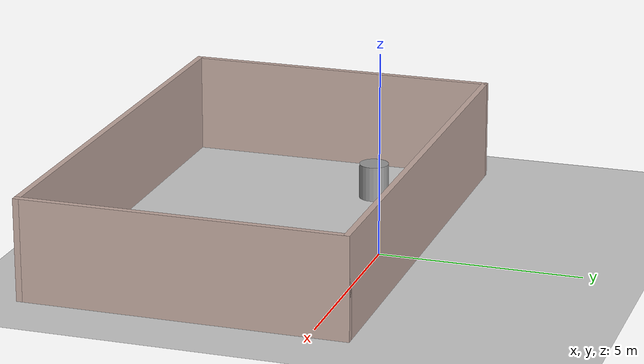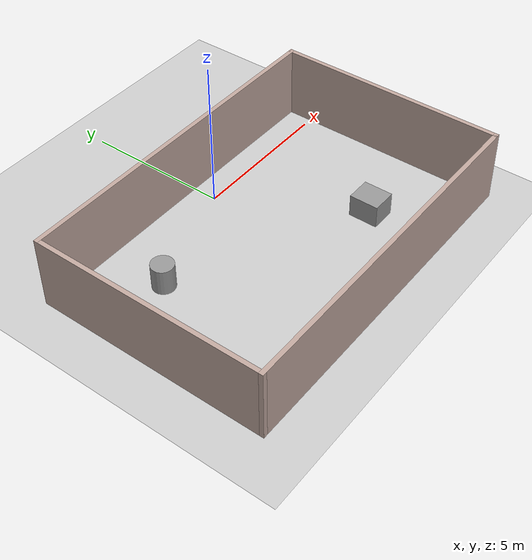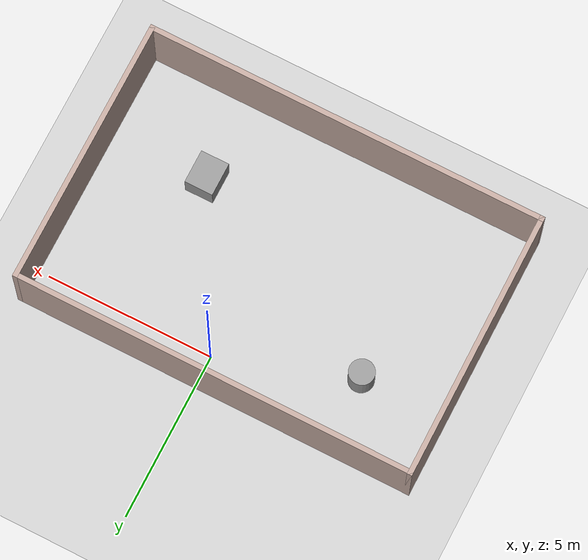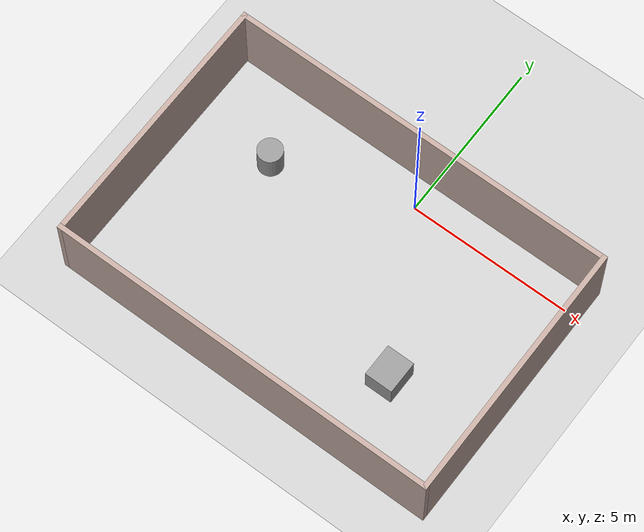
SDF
<sdf version="1.6">
 <world name="default">
  <light name="sun" type="directional">
   <pose>0 0 10 0 -0 0</pose>
   <diffuse>0.8 0.8 0.8 1</diffuse>
   <specular>0.2 0.2 0.2 1</specular>
   <attenuation>
    <range>1000</range>
    <constant>0.9</constant>
    <linear>0.01</linear>
    <quadratic>0.001</quadratic>
   </attenuation>
   <direction>-0.5 0.1 -0.9</direction>
  </light>
  <model name="ground_plane">
   <static>1</static>
   <link name="link">
    <collision name="collision">
     <geometry><plane><normal>0 0 1</normal><size>100 100</size></plane></geometry>
     <surface><friction><ode><mu>100</mu><mu2>50</mu2></ode></friction></surface>
    </collision>
    <visual name="visual">
     <cast_shadows>0</cast_shadows>
     <geometry><plane><normal>0 0 1</normal><size>100 100</size></plane></geometry>
     <material>
      <script><uri>file://media/materials/scripts/gazebo.material</uri><name>Gazebo/Grey</name></script>
     </material>
    </visual>
   </link>
  </model>
  <gravity>0 0 -9.8</gravity>
  <magnetic_field>6e-06 2.3e-05 -4.2e-05</magnetic_field>
  <atmosphere type="adiabatic"/>
  <physics name="default_physics" default="0" type="ode">
   <max_step_size>0.001</max_step_size>
   <real_time_factor>1</real_time_factor>
   <real_time_update_rate>1000</real_time_update_rate>
  </physics>
  <scene><ambient>0.4 0.4 0.4 1</ambient><background>0.7 0.7 0.7 1</background><shadows>1</shadows></scene>
  <audio><device>default</device></audio>
  <spherical_coordinates>
   <surface_model>EARTH_WGS84</surface_model>
   <latitude_deg>0</latitude_deg>
   <longitude_deg>0</longitude_deg>
   <elevation>0</elevation>
   <heading_deg>0</heading_deg>
  </spherical_coordinates>
  <model name="wall">
   <pose>-0.541772 -3.0368 0 0 -0 0</pose>
   <link name="Wall_12">
    <collision name="Wall_12_Collision">
     <geometry><box><size>8 0.15 2.5</size></box></geometry>
     <pose>0 0 1.25 0 -0 0</pose>
    </collision>
    <visual name="Wall_12_Visual">
     <pose>0 0 1.25 0 -0 0</pose>
     <geometry><box><size>8 0.15 2.5</size></box></geometry>
     <material>
      <script><uri>file://media/materials/scripts/gazebo.material</uri><name>Gazebo/Grey</name></script>
      <ambient>0.760784 0.662745 0.627451 1</ambient>
     </material>
     <meta><layer>0</layer></meta>
    </visual>
    <pose>-5.925 0 0 0 -0 1.5708</pose>
   </link>
   <link name="Wall_13">
    <collision name="Wall_13_Collision">
     <geometry><box><size>12 0.15 2.5</size></box></geometry>
     <pose>0 0 1.25 0 -0 0</pose>
    </collision>
    <visual name="Wall_13_Visual">
     <pose>0 0 1.25 0 -0 0</pose>
     <geometry><box><size>12 0.15 2.5</size></box></geometry>
     <material>
      <script><uri>file://media/materials/scripts/gazebo.material</uri><name>Gazebo/Grey</name></script>
      <ambient>0.760784 0.662745 0.627451 1</ambient>
     </material>
     <meta><layer>0</layer></meta>
    </visual>
    <pose>0 3.925 0 0 -0 0</pose>
   </link>
   <link name="Wall_14">
    <collision name="Wall_14_Collision">
     <geometry><box><size>8 0.15 2.5</size></box></geometry>
     <pose>0 0 1.25 0 -0 0</pose>
    </collision>
    <visual name="Wall_14_Visual">
     <pose>0 0 1.25 0 -0 0</pose>
     <geometry><box><size>8 0.15 2.5</size></box></geometry>
     <material>
      <script><uri>file://media/materials/scripts/gazebo.material</uri><name>Gazebo/Grey</name></script>
      <ambient>0.760784 0.662745 0.627451 1</ambient>
     </material>
     <meta><layer>0</layer></meta>
    </visual>
    <pose>5.925 0 0 0 -0 -1.5708</pose>
   </link>
   <link name="Wall_15">
    <collision name="Wall_15_Collision">
     <geometry><box><size>12 0.15 2.5</size></box></geometry>
     <pose>0 0 1.25 0 -0 0</pose>
    </collision>
    <visual name="Wall_15_Visual">
     <pose>0 0 1.25 0 -0 0</pose>
     <geometry><box><size>12 0.15 2.5</size></box></geometry>
     <material>
      <script><uri>file://media/materials/scripts/gazebo.material</uri><name>Gazebo/Grey</name></script>
      <ambient>0.760784 0.662745 0.627451 1</ambient>
     </material>
     <meta><layer>0</layer></meta>
    </visual>
    <pose>0 -3.925 0 0 -0 3.14159</pose>
   </link>
   <static>1</static>
  </model>
  <model name="unit_cylinder">
   <pose>-3.9375 -1.32011 0.45733 0 -0 0</pose>
   <link name="link">
    <inertial>
     <mass>1</mass>
     <inertia><ixx>0.145833</ixx><ixy>0</ixy><ixz>0</ixz><iyy>0.145833</iyy><iyz>0</iyz><izz>0.125</izz></inertia>
    </inertial>
    <collision name="collision">
     <geometry><cylinder><radius>0.374708</radius><length>0.895036</length></cylinder></geometry>
    </collision>
    <visual name="visual">
     <geometry><cylinder><radius>0.374708</radius><length>0.895036</length></cylinder></geometry>
     <material>
      <script><name>Gazebo/Grey</name><uri>file://media/materials/scripts/gazebo.material</uri></script>
     </material>
    </visual>
   </link>
  </model>
  <model name="unit_box">
   <pose>2.41069 -4.41988 0.397921 0 -0 0</pose>
   <link name="link">
    <inertial>
     <mass>1</mass>
     <inertia>
      <ixx>0.166667</ixx>
      <ixy>0</ixy>
      <ixz>0</ixz>
      <iyy>0.166667</iyy>
      <iyz>0</iyz>
      <izz>0.166667</izz>
     </inertia>
    </inertial>
    <collision name="collision"><geometry><box><size>0.854172 1 0.783708</size></box></geometry></collision>
    <visual name="visual">
     <geometry><box><size>0.854172 1 0.783708</size></box></geometry>
     <material>
      <script><name>Gazebo/Grey</name><uri>file://media/materials/scripts/gazebo.material</uri></script>
     </material>
    </visual>
   </link>
  </model>
 </world>
</sdf>
